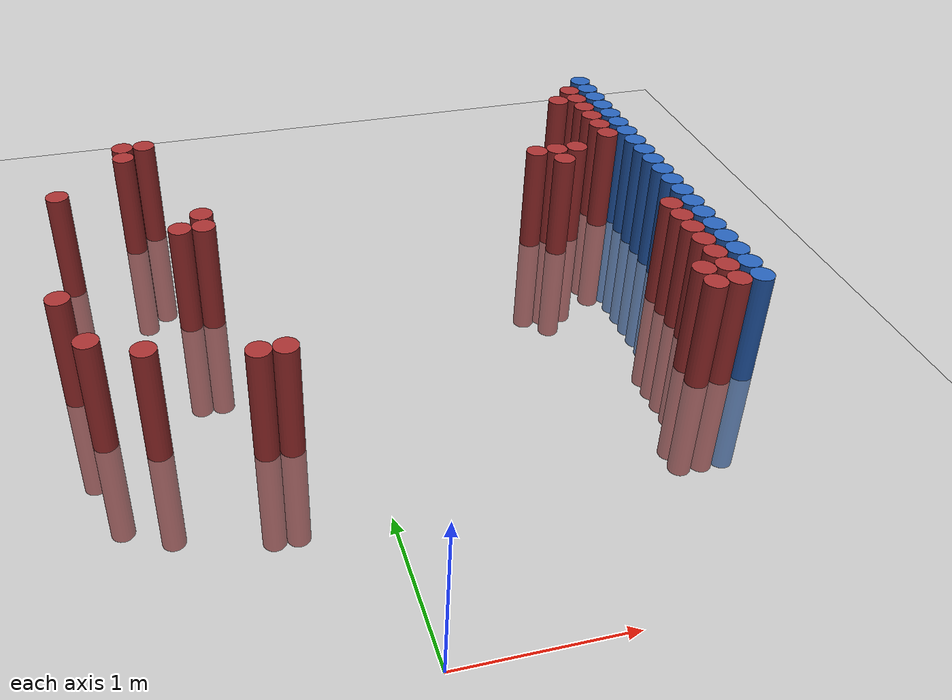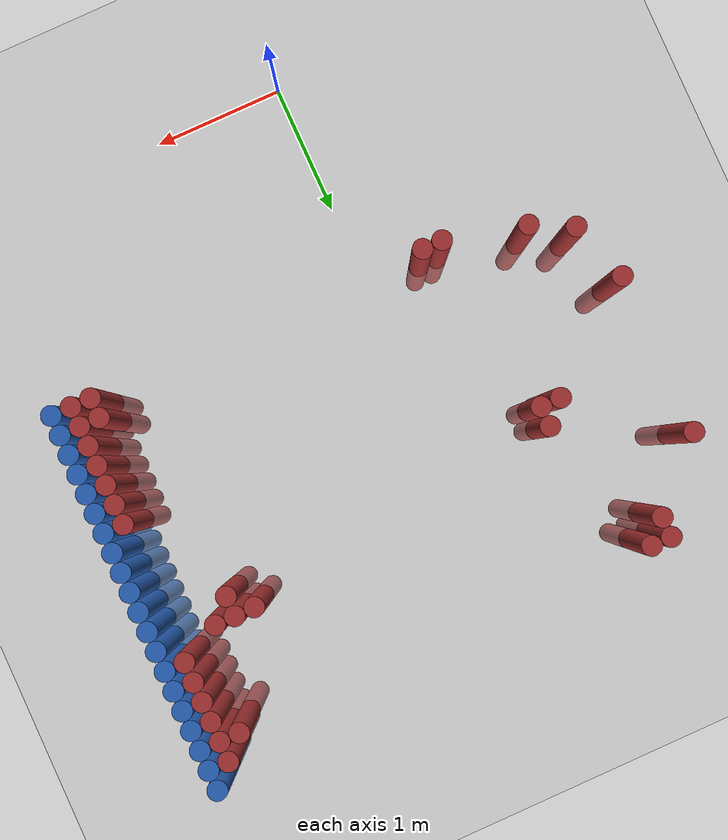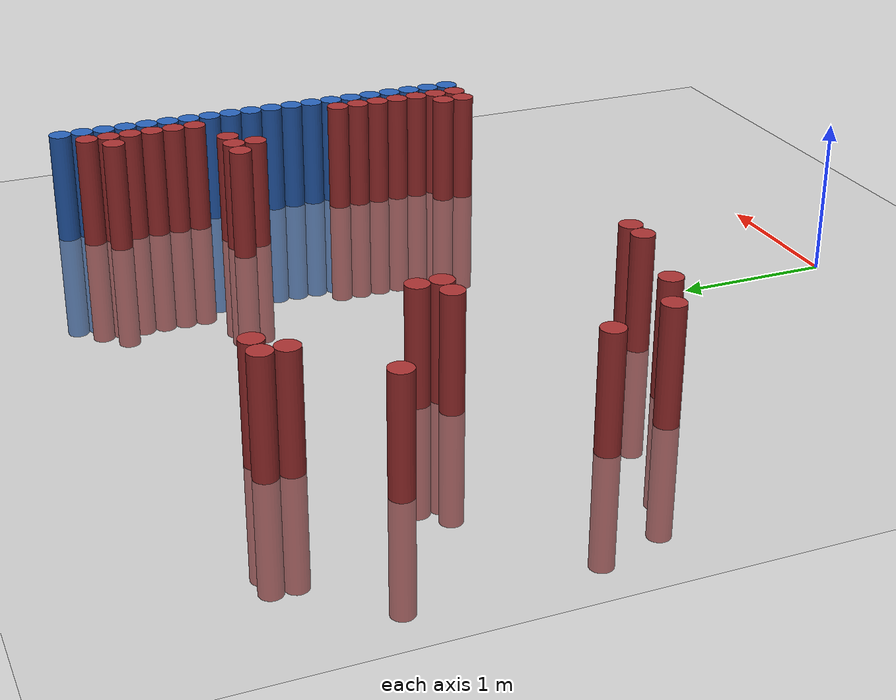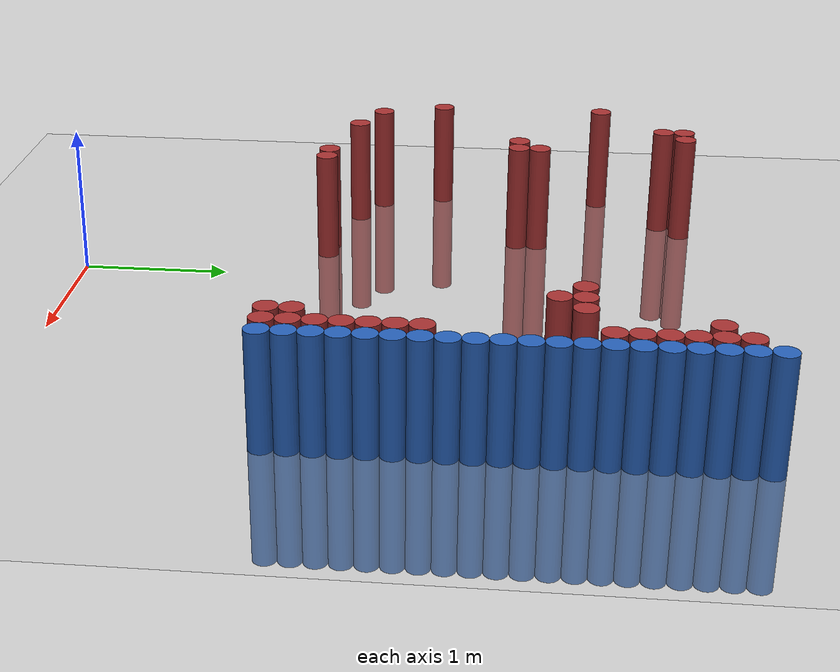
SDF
<sdf version="1.6">
 <world name="default">
  <model name="ground_plane">
   <static>1</static>
   <link name="link">
    <collision name="collision">
     <geometry><plane><normal>0 0 1</normal><size>100 100</size></plane></geometry>
     <surface><friction><ode><mu>100</mu><mu2>50</mu2></ode></friction></surface>
    </collision>
    <visual name="visual">
     <cast_shadows>0</cast_shadows>
     <geometry><plane><normal>0 0 1</normal><size>100 100</size></plane></geometry>
     <material>
      <script><uri>file://media/materials/scripts/gazebo.material</uri><name>Gazebo/Grey</name></script>
     </material>
    </visual>
   </link>
  </model>
  <model name="unit_cylinder_152">
   <static>1</static>
   <pose>-1.625000 2.425000 0.000000 0.000000 0.000000 0.000000</pose>
   <link name="link">
    <inertial>
     <mass>1</mass>
     <inertia><ixx>0.145833</ixx><ixy>0</ixy><ixz>0</ixz><iyy>0.145833</iyy><iyz>0</iyz><izz>0.125</izz></inertia>
    </inertial>
    <collision name="collision">
     <geometry><cylinder><radius>0.075000</radius><length>1.5</length></cylinder></geometry>
    </collision>
    <visual name="visual">
     <geometry><cylinder><radius>0.075000</radius><length>1.5</length></cylinder></geometry>
     <material>
      <ambient>0.648000 0.192000 0.192000 1</ambient>
      <diffuse>0.648000 0.192000 0.192000 1</diffuse>
     </material>
     <material>
      <script><name>Gazebo/Grey</name><uri>file://media/materials/scripts/gazebo.material</uri></script>
     </material>
    </visual>
   </link>
  </model>
  <model name="unit_cylinder_153">
   <static>1</static>
   <pose>-1.625000 3.625000 0.000000 0.000000 0.000000 0.000000</pose>
   <link name="link">
    <inertial>
     <mass>1</mass>
     <inertia><ixx>0.145833</ixx><ixy>0</ixy><ixz>0</ixz><iyy>0.145833</iyy><iyz>0</iyz><izz>0.125</izz></inertia>
    </inertial>
    <collision name="collision">
     <geometry><cylinder><radius>0.075000</radius><length>1.5</length></cylinder></geometry>
    </collision>
    <visual name="visual">
     <geometry><cylinder><radius>0.075000</radius><length>1.5</length></cylinder></geometry>
     <material>
      <ambient>0.648000 0.192000 0.192000 1</ambient>
      <diffuse>0.648000 0.192000 0.192000 1</diffuse>
     </material>
     <material>
      <script><name>Gazebo/Grey</name><uri>file://media/materials/scripts/gazebo.material</uri></script>
     </material>
    </visual>
   </link>
  </model>
  <model name="unit_cylinder_154">
   <static>1</static>
   <pose>-1.475000 1.975000 0.000000 0.000000 0.000000 0.000000</pose>
   <link name="link">
    <inertial>
     <mass>1</mass>
     <inertia><ixx>0.145833</ixx><ixy>0</ixy><ixz>0</ixz><iyy>0.145833</iyy><iyz>0</iyz><izz>0.125</izz></inertia>
    </inertial>
    <collision name="collision">
     <geometry><cylinder><radius>0.075000</radius><length>1.5</length></cylinder></geometry>
    </collision>
    <visual name="visual">
     <geometry><cylinder><radius>0.075000</radius><length>1.5</length></cylinder></geometry>
     <material>
      <ambient>0.648000 0.192000 0.192000 1</ambient>
      <diffuse>0.648000 0.192000 0.192000 1</diffuse>
     </material>
     <material>
      <script><name>Gazebo/Grey</name><uri>file://media/materials/scripts/gazebo.material</uri></script>
     </material>
    </visual>
   </link>
  </model>
  <model name="unit_cylinder_163">
   <static>1</static>
   <pose>-1.175000 1.825000 0.000000 0.000000 0.000000 0.000000</pose>
   <link name="link">
    <inertial>
     <mass>1</mass>
     <inertia><ixx>0.145833</ixx><ixy>0</ixy><ixz>0</ixz><iyy>0.145833</iyy><iyz>0</iyz><izz>0.125</izz></inertia>
    </inertial>
    <collision name="collision">
     <geometry><cylinder><radius>0.075000</radius><length>1.5</length></cylinder></geometry>
    </collision>
    <visual name="visual">
     <geometry><cylinder><radius>0.075000</radius><length>1.5</length></cylinder></geometry>
     <material>
      <ambient>0.648000 0.192000 0.192000 1</ambient>
      <diffuse>0.648000 0.192000 0.192000 1</diffuse>
     </material>
     <material>
      <script><name>Gazebo/Grey</name><uri>file://media/materials/scripts/gazebo.material</uri></script>
     </material>
    </visual>
   </link>
  </model>
  <model name="unit_cylinder_164">
   <static>1</static>
   <pose>-1.175000 4.075000 0.000000 0.000000 0.000000 0.000000</pose>
   <link name="link">
    <inertial>
     <mass>1</mass>
     <inertia><ixx>0.145833</ixx><ixy>0</ixy><ixz>0</ixz><iyy>0.145833</iyy><iyz>0</iyz><izz>0.125</izz></inertia>
    </inertial>
    <collision name="collision">
     <geometry><cylinder><radius>0.075000</radius><length>1.5</length></cylinder></geometry>
    </collision>
    <visual name="visual">
     <geometry><cylinder><radius>0.075000</radius><length>1.5</length></cylinder></geometry>
     <material>
      <ambient>0.648000 0.192000 0.192000 1</ambient>
      <diffuse>0.648000 0.192000 0.192000 1</diffuse>
     </material>
     <material>
      <script><name>Gazebo/Grey</name><uri>file://media/materials/scripts/gazebo.material</uri></script>
     </material>
    </visual>
   </link>
  </model>
  <model name="unit_cylinder_165">
   <static>1</static>
   <pose>-1.175000 4.225000 0.000000 0.000000 0.000000 0.000000</pose>
   <link name="link">
    <inertial>
     <mass>1</mass>
     <inertia><ixx>0.145833</ixx><ixy>0</ixy><ixz>0</ixz><iyy>0.145833</iyy><iyz>0</iyz><izz>0.125</izz></inertia>
    </inertial>
    <collision name="collision">
     <geometry><cylinder><radius>0.075000</radius><length>1.5</length></cylinder></geometry>
    </collision>
    <visual name="visual">
     <geometry><cylinder><radius>0.075000</radius><length>1.5</length></cylinder></geometry>
     <material>
      <ambient>0.648000 0.192000 0.192000 1</ambient>
      <diffuse>0.648000 0.192000 0.192000 1</diffuse>
     </material>
     <material>
      <script><name>Gazebo/Grey</name><uri>file://media/materials/scripts/gazebo.material</uri></script>
     </material>
    </visual>
   </link>
  </model>
  <model name="unit_cylinder_168">
   <static>1</static>
   <pose>-1.025000 4.225000 0.000000 0.000000 0.000000 0.000000</pose>
   <link name="link">
    <inertial>
     <mass>1</mass>
     <inertia><ixx>0.145833</ixx><ixy>0</ixy><ixz>0</ixz><iyy>0.145833</iyy><iyz>0</iyz><izz>0.125</izz></inertia>
    </inertial>
    <collision name="collision">
     <geometry><cylinder><radius>0.075000</radius><length>1.5</length></cylinder></geometry>
    </collision>
    <visual name="visual">
     <geometry><cylinder><radius>0.075000</radius><length>1.5</length></cylinder></geometry>
     <material>
      <ambient>0.648000 0.192000 0.192000 1</ambient>
      <diffuse>0.648000 0.192000 0.192000 1</diffuse>
     </material>
     <material>
      <script><name>Gazebo/Grey</name><uri>file://media/materials/scripts/gazebo.material</uri></script>
     </material>
    </visual>
   </link>
  </model>
  <model name="unit_cylinder_170">
   <static>1</static>
   <pose>-0.875000 3.025000 0.000000 0.000000 0.000000 0.000000</pose>
   <link name="link">
    <inertial>
     <mass>1</mass>
     <inertia><ixx>0.145833</ixx><ixy>0</ixy><ixz>0</ixz><iyy>0.145833</iyy><iyz>0</iyz><izz>0.125</izz></inertia>
    </inertial>
    <collision name="collision">
     <geometry><cylinder><radius>0.075000</radius><length>1.5</length></cylinder></geometry>
    </collision>
    <visual name="visual">
     <geometry><cylinder><radius>0.075000</radius><length>1.5</length></cylinder></geometry>
     <material>
      <ambient>0.648000 0.192000 0.192000 1</ambient>
      <diffuse>0.648000 0.192000 0.192000 1</diffuse>
     </material>
     <material>
      <script><name>Gazebo/Grey</name><uri>file://media/materials/scripts/gazebo.material</uri></script>
     </material>
    </visual>
   </link>
  </model>
  <model name="unit_cylinder_174">
   <static>1</static>
   <pose>-0.725000 3.025000 0.000000 0.000000 0.000000 0.000000</pose>
   <link name="link">
    <inertial>
     <mass>1</mass>
     <inertia><ixx>0.145833</ixx><ixy>0</ixy><ixz>0</ixz><iyy>0.145833</iyy><iyz>0</iyz><izz>0.125</izz></inertia>
    </inertial>
    <collision name="collision">
     <geometry><cylinder><radius>0.075000</radius><length>1.5</length></cylinder></geometry>
    </collision>
    <visual name="visual">
     <geometry><cylinder><radius>0.075000</radius><length>1.5</length></cylinder></geometry>
     <material>
      <ambient>0.648000 0.192000 0.192000 1</ambient>
      <diffuse>0.648000 0.192000 0.192000 1</diffuse>
     </material>
     <material>
      <script><name>Gazebo/Grey</name><uri>file://media/materials/scripts/gazebo.material</uri></script>
     </material>
    </visual>
   </link>
  </model>
  <model name="unit_cylinder_175">
   <static>1</static>
   <pose>-0.725000 3.175000 0.000000 0.000000 0.000000 0.000000</pose>
   <link name="link">
    <inertial>
     <mass>1</mass>
     <inertia><ixx>0.145833</ixx><ixy>0</ixy><ixz>0</ixz><iyy>0.145833</iyy><iyz>0</iyz><izz>0.125</izz></inertia>
    </inertial>
    <collision name="collision">
     <geometry><cylinder><radius>0.075000</radius><length>1.5</length></cylinder></geometry>
    </collision>
    <visual name="visual">
     <geometry><cylinder><radius>0.075000</radius><length>1.5</length></cylinder></geometry>
     <material>
      <ambient>0.648000 0.192000 0.192000 1</ambient>
      <diffuse>0.648000 0.192000 0.192000 1</diffuse>
     </material>
     <material>
      <script><name>Gazebo/Grey</name><uri>file://media/materials/scripts/gazebo.material</uri></script>
     </material>
    </visual>
   </link>
  </model>
  <model name="unit_cylinder_180">
   <static>1</static>
   <pose>-0.575000 1.675000 0.000000 0.000000 0.000000 0.000000</pose>
   <link name="link">
    <inertial>
     <mass>1</mass>
     <inertia><ixx>0.145833</ixx><ixy>0</ixy><ixz>0</ixz><iyy>0.145833</iyy><iyz>0</iyz><izz>0.125</izz></inertia>
    </inertial>
    <collision name="collision">
     <geometry><cylinder><radius>0.075000</radius><length>1.5</length></cylinder></geometry>
    </collision>
    <visual name="visual">
     <geometry><cylinder><radius>0.075000</radius><length>1.5</length></cylinder></geometry>
     <material>
      <ambient>0.648000 0.192000 0.192000 1</ambient>
      <diffuse>0.648000 0.192000 0.192000 1</diffuse>
     </material>
     <material>
      <script><name>Gazebo/Grey</name><uri>file://media/materials/scripts/gazebo.material</uri></script>
     </material>
    </visual>
   </link>
  </model>
  <model name="unit_cylinder_183">
   <static>1</static>
   <pose>-0.425000 1.675000 0.000000 0.000000 0.000000 0.000000</pose>
   <link name="link">
    <inertial>
     <mass>1</mass>
     <inertia><ixx>0.145833</ixx><ixy>0</ixy><ixz>0</ixz><iyy>0.145833</iyy><iyz>0</iyz><izz>0.125</izz></inertia>
    </inertial>
    <collision name="collision">
     <geometry><cylinder><radius>0.075000</radius><length>1.5</length></cylinder></geometry>
    </collision>
    <visual name="visual">
     <geometry><cylinder><radius>0.075000</radius><length>1.5</length></cylinder></geometry>
     <material>
      <ambient>0.648000 0.192000 0.192000 1</ambient>
      <diffuse>0.648000 0.192000 0.192000 1</diffuse>
     </material>
     <material>
      <script><name>Gazebo/Grey</name><uri>file://media/materials/scripts/gazebo.material</uri></script>
     </material>
    </visual>
   </link>
  </model>
  <model name="unit_cylinder_194">
   <static>1</static>
   <pose>1.675000 3.475000 0.000000 0.000000 0.000000 0.000000</pose>
   <link name="link">
    <inertial>
     <mass>1</mass>
     <inertia><ixx>0.145833</ixx><ixy>0</ixy><ixz>0</ixz><iyy>0.145833</iyy><iyz>0</iyz><izz>0.125</izz></inertia>
    </inertial>
    <collision name="collision">
     <geometry><cylinder><radius>0.075000</radius><length>1.5</length></cylinder></geometry>
    </collision>
    <visual name="visual">
     <geometry><cylinder><radius>0.075000</radius><length>1.5</length></cylinder></geometry>
     <material>
      <ambient>0.648000 0.192000 0.192000 1</ambient>
      <diffuse>0.648000 0.192000 0.192000 1</diffuse>
     </material>
     <material>
      <script><name>Gazebo/Grey</name><uri>file://media/materials/scripts/gazebo.material</uri></script>
     </material>
    </visual>
   </link>
  </model>
  <model name="unit_cylinder_197">
   <static>1</static>
   <pose>1.825000 3.325000 0.000000 0.000000 0.000000 0.000000</pose>
   <link name="link">
    <inertial>
     <mass>1</mass>
     <inertia><ixx>0.145833</ixx><ixy>0</ixy><ixz>0</ixz><iyy>0.145833</iyy><iyz>0</iyz><izz>0.125</izz></inertia>
    </inertial>
    <collision name="collision">
     <geometry><cylinder><radius>0.075000</radius><length>1.5</length></cylinder></geometry>
    </collision>
    <visual name="visual">
     <geometry><cylinder><radius>0.075000</radius><length>1.5</length></cylinder></geometry>
     <material>
      <ambient>0.648000 0.192000 0.192000 1</ambient>
      <diffuse>0.648000 0.192000 0.192000 1</diffuse>
     </material>
     <material>
      <script><name>Gazebo/Grey</name><uri>file://media/materials/scripts/gazebo.material</uri></script>
     </material>
    </visual>
   </link>
  </model>
  <model name="unit_cylinder_198">
   <static>1</static>
   <pose>1.825000 3.475000 0.000000 0.000000 0.000000 0.000000</pose>
   <link name="link">
    <inertial>
     <mass>1</mass>
     <inertia><ixx>0.145833</ixx><ixy>0</ixy><ixz>0</ixz><iyy>0.145833</iyy><iyz>0</iyz><izz>0.125</izz></inertia>
    </inertial>
    <collision name="collision">
     <geometry><cylinder><radius>0.075000</radius><length>1.5</length></cylinder></geometry>
    </collision>
    <visual name="visual">
     <geometry><cylinder><radius>0.075000</radius><length>1.5</length></cylinder></geometry>
     <material>
      <ambient>0.648000 0.192000 0.192000 1</ambient>
      <diffuse>0.648000 0.192000 0.192000 1</diffuse>
     </material>
     <material>
      <script><name>Gazebo/Grey</name><uri>file://media/materials/scripts/gazebo.material</uri></script>
     </material>
    </visual>
   </link>
  </model>
  <model name="unit_cylinder_201">
   <static>1</static>
   <pose>1.975000 3.475000 0.000000 0.000000 0.000000 0.000000</pose>
   <link name="link">
    <inertial>
     <mass>1</mass>
     <inertia><ixx>0.145833</ixx><ixy>0</ixy><ixz>0</ixz><iyy>0.145833</iyy><iyz>0</iyz><izz>0.125</izz></inertia>
    </inertial>
    <collision name="collision">
     <geometry><cylinder><radius>0.075000</radius><length>1.5</length></cylinder></geometry>
    </collision>
    <visual name="visual">
     <geometry><cylinder><radius>0.075000</radius><length>1.5</length></cylinder></geometry>
     <material>
      <ambient>0.648000 0.192000 0.192000 1</ambient>
      <diffuse>0.648000 0.192000 0.192000 1</diffuse>
     </material>
     <material>
      <script><name>Gazebo/Grey</name><uri>file://media/materials/scripts/gazebo.material</uri></script>
     </material>
    </visual>
   </link>
  </model>
  <model name="unit_cylinder_205">
   <static>1</static>
   <pose>2.125000 1.675000 0.000000 0.000000 0.000000 0.000000</pose>
   <link name="link">
    <inertial>
     <mass>1</mass>
     <inertia><ixx>0.145833</ixx><ixy>0</ixy><ixz>0</ixz><iyy>0.145833</iyy><iyz>0</iyz><izz>0.125</izz></inertia>
    </inertial>
    <collision name="collision">
     <geometry><cylinder><radius>0.075000</radius><length>1.5</length></cylinder></geometry>
    </collision>
    <visual name="visual">
     <geometry><cylinder><radius>0.075000</radius><length>1.5</length></cylinder></geometry>
     <material>
      <ambient>0.648000 0.192000 0.192000 1</ambient>
      <diffuse>0.648000 0.192000 0.192000 1</diffuse>
     </material>
     <material>
      <script><name>Gazebo/Grey</name><uri>file://media/materials/scripts/gazebo.material</uri></script>
     </material>
    </visual>
   </link>
  </model>
  <model name="unit_cylinder_206">
   <static>1</static>
   <pose>2.125000 1.825000 0.000000 0.000000 0.000000 0.000000</pose>
   <link name="link">
    <inertial>
     <mass>1</mass>
     <inertia><ixx>0.145833</ixx><ixy>0</ixy><ixz>0</ixz><iyy>0.145833</iyy><iyz>0</iyz><izz>0.125</izz></inertia>
    </inertial>
    <collision name="collision">
     <geometry><cylinder><radius>0.075000</radius><length>1.5</length></cylinder></geometry>
    </collision>
    <visual name="visual">
     <geometry><cylinder><radius>0.075000</radius><length>1.5</length></cylinder></geometry>
     <material>
      <ambient>0.648000 0.192000 0.192000 1</ambient>
      <diffuse>0.648000 0.192000 0.192000 1</diffuse>
     </material>
     <material>
      <script><name>Gazebo/Grey</name><uri>file://media/materials/scripts/gazebo.material</uri></script>
     </material>
    </visual>
   </link>
  </model>
  <model name="unit_cylinder_207">
   <static>1</static>
   <pose>2.125000 4.225000 0.000000 0.000000 0.000000 0.000000</pose>
   <link name="link">
    <inertial>
     <mass>1</mass>
     <inertia><ixx>0.145833</ixx><ixy>0</ixy><ixz>0</ixz><iyy>0.145833</iyy><iyz>0</iyz><izz>0.125</izz></inertia>
    </inertial>
    <collision name="collision">
     <geometry><cylinder><radius>0.075000</radius><length>1.5</length></cylinder></geometry>
    </collision>
    <visual name="visual">
     <geometry><cylinder><radius>0.075000</radius><length>1.5</length></cylinder></geometry>
     <material>
      <ambient>0.648000 0.192000 0.192000 1</ambient>
      <diffuse>0.648000 0.192000 0.192000 1</diffuse>
     </material>
     <material>
      <script><name>Gazebo/Grey</name><uri>file://media/materials/scripts/gazebo.material</uri></script>
     </material>
    </visual>
   </link>
  </model>
  <model name="unit_cylinder_215">
   <static>1</static>
   <pose>2.275000 1.675000 0.000000 0.000000 0.000000 0.000000</pose>
   <link name="link">
    <inertial>
     <mass>1</mass>
     <inertia><ixx>0.145833</ixx><ixy>0</ixy><ixz>0</ixz><iyy>0.145833</iyy><iyz>0</iyz><izz>0.125</izz></inertia>
    </inertial>
    <collision name="collision">
     <geometry><cylinder><radius>0.075000</radius><length>1.5</length></cylinder></geometry>
    </collision>
    <visual name="visual">
     <geometry><cylinder><radius>0.075000</radius><length>1.5</length></cylinder></geometry>
     <material>
      <ambient>0.648000 0.192000 0.192000 1</ambient>
      <diffuse>0.648000 0.192000 0.192000 1</diffuse>
     </material>
     <material>
      <script><name>Gazebo/Grey</name><uri>file://media/materials/scripts/gazebo.material</uri></script>
     </material>
    </visual>
   </link>
  </model>
  <model name="unit_cylinder_216">
   <static>1</static>
   <pose>2.275000 1.825000 0.000000 0.000000 0.000000 0.000000</pose>
   <link name="link">
    <inertial>
     <mass>1</mass>
     <inertia><ixx>0.145833</ixx><ixy>0</ixy><ixz>0</ixz><iyy>0.145833</iyy><iyz>0</iyz><izz>0.125</izz></inertia>
    </inertial>
    <collision name="collision">
     <geometry><cylinder><radius>0.075000</radius><length>1.5</length></cylinder></geometry>
    </collision>
    <visual name="visual">
     <geometry><cylinder><radius>0.075000</radius><length>1.5</length></cylinder></geometry>
     <material>
      <ambient>0.648000 0.192000 0.192000 1</ambient>
      <diffuse>0.648000 0.192000 0.192000 1</diffuse>
     </material>
     <material>
      <script><name>Gazebo/Grey</name><uri>file://media/materials/scripts/gazebo.material</uri></script>
     </material>
    </visual>
   </link>
  </model>
  <model name="unit_cylinder_217">
   <static>1</static>
   <pose>2.275000 1.975000 0.000000 0.000000 0.000000 0.000000</pose>
   <link name="link">
    <inertial>
     <mass>1</mass>
     <inertia><ixx>0.145833</ixx><ixy>0</ixy><ixz>0</ixz><iyy>0.145833</iyy><iyz>0</iyz><izz>0.125</izz></inertia>
    </inertial>
    <collision name="collision">
     <geometry><cylinder><radius>0.075000</radius><length>1.5</length></cylinder></geometry>
    </collision>
    <visual name="visual">
     <geometry><cylinder><radius>0.075000</radius><length>1.5</length></cylinder></geometry>
     <material>
      <ambient>0.648000 0.192000 0.192000 1</ambient>
      <diffuse>0.648000 0.192000 0.192000 1</diffuse>
     </material>
     <material>
      <script><name>Gazebo/Grey</name><uri>file://media/materials/scripts/gazebo.material</uri></script>
     </material>
    </visual>
   </link>
  </model>
  <model name="unit_cylinder_218">
   <static>1</static>
   <pose>2.275000 2.125000 0.000000 0.000000 0.000000 0.000000</pose>
   <link name="link">
    <inertial>
     <mass>1</mass>
     <inertia><ixx>0.145833</ixx><ixy>0</ixy><ixz>0</ixz><iyy>0.145833</iyy><iyz>0</iyz><izz>0.125</izz></inertia>
    </inertial>
    <collision name="collision">
     <geometry><cylinder><radius>0.075000</radius><length>1.5</length></cylinder></geometry>
    </collision>
    <visual name="visual">
     <geometry><cylinder><radius>0.075000</radius><length>1.5</length></cylinder></geometry>
     <material>
      <ambient>0.648000 0.192000 0.192000 1</ambient>
      <diffuse>0.648000 0.192000 0.192000 1</diffuse>
     </material>
     <material>
      <script><name>Gazebo/Grey</name><uri>file://media/materials/scripts/gazebo.material</uri></script>
     </material>
    </visual>
   </link>
  </model>
  <model name="unit_cylinder_219">
   <static>1</static>
   <pose>2.275000 2.275000 0.000000 0.000000 0.000000 0.000000</pose>
   <link name="link">
    <inertial>
     <mass>1</mass>
     <inertia><ixx>0.145833</ixx><ixy>0</ixy><ixz>0</ixz><iyy>0.145833</iyy><iyz>0</iyz><izz>0.125</izz></inertia>
    </inertial>
    <collision name="collision">
     <geometry><cylinder><radius>0.075000</radius><length>1.5</length></cylinder></geometry>
    </collision>
    <visual name="visual">
     <geometry><cylinder><radius>0.075000</radius><length>1.5</length></cylinder></geometry>
     <material>
      <ambient>0.648000 0.192000 0.192000 1</ambient>
      <diffuse>0.648000 0.192000 0.192000 1</diffuse>
     </material>
     <material>
      <script><name>Gazebo/Grey</name><uri>file://media/materials/scripts/gazebo.material</uri></script>
     </material>
    </visual>
   </link>
  </model>
  <model name="unit_cylinder_220">
   <static>1</static>
   <pose>2.275000 2.425000 0.000000 0.000000 0.000000 0.000000</pose>
   <link name="link">
    <inertial>
     <mass>1</mass>
     <inertia><ixx>0.145833</ixx><ixy>0</ixy><ixz>0</ixz><iyy>0.145833</iyy><iyz>0</iyz><izz>0.125</izz></inertia>
    </inertial>
    <collision name="collision">
     <geometry><cylinder><radius>0.075000</radius><length>1.5</length></cylinder></geometry>
    </collision>
    <visual name="visual">
     <geometry><cylinder><radius>0.075000</radius><length>1.5</length></cylinder></geometry>
     <material>
      <ambient>0.648000 0.192000 0.192000 1</ambient>
      <diffuse>0.648000 0.192000 0.192000 1</diffuse>
     </material>
     <material>
      <script><name>Gazebo/Grey</name><uri>file://media/materials/scripts/gazebo.material</uri></script>
     </material>
    </visual>
   </link>
  </model>
  <model name="unit_cylinder_221">
   <static>1</static>
   <pose>2.275000 2.575000 0.000000 0.000000 0.000000 0.000000</pose>
   <link name="link">
    <inertial>
     <mass>1</mass>
     <inertia><ixx>0.145833</ixx><ixy>0</ixy><ixz>0</ixz><iyy>0.145833</iyy><iyz>0</iyz><izz>0.125</izz></inertia>
    </inertial>
    <collision name="collision">
     <geometry><cylinder><radius>0.075000</radius><length>1.5</length></cylinder></geometry>
    </collision>
    <visual name="visual">
     <geometry><cylinder><radius>0.075000</radius><length>1.5</length></cylinder></geometry>
     <material>
      <ambient>0.648000 0.192000 0.192000 1</ambient>
      <diffuse>0.648000 0.192000 0.192000 1</diffuse>
     </material>
     <material>
      <script><name>Gazebo/Grey</name><uri>file://media/materials/scripts/gazebo.material</uri></script>
     </material>
    </visual>
   </link>
  </model>
  <model name="unit_cylinder_222">
   <static>1</static>
   <pose>2.275000 3.625000 0.000000 0.000000 0.000000 0.000000</pose>
   <link name="link">
    <inertial>
     <mass>1</mass>
     <inertia><ixx>0.145833</ixx><ixy>0</ixy><ixz>0</ixz><iyy>0.145833</iyy><iyz>0</iyz><izz>0.125</izz></inertia>
    </inertial>
    <collision name="collision">
     <geometry><cylinder><radius>0.075000</radius><length>1.5</length></cylinder></geometry>
    </collision>
    <visual name="visual">
     <geometry><cylinder><radius>0.075000</radius><length>1.5</length></cylinder></geometry>
     <material>
      <ambient>0.648000 0.192000 0.192000 1</ambient>
      <diffuse>0.648000 0.192000 0.192000 1</diffuse>
     </material>
     <material>
      <script><name>Gazebo/Grey</name><uri>file://media/materials/scripts/gazebo.material</uri></script>
     </material>
    </visual>
   </link>
  </model>
  <model name="unit_cylinder_223">
   <static>1</static>
   <pose>2.275000 3.775000 0.000000 0.000000 0.000000 0.000000</pose>
   <link name="link">
    <inertial>
     <mass>1</mass>
     <inertia><ixx>0.145833</ixx><ixy>0</ixy><ixz>0</ixz><iyy>0.145833</iyy><iyz>0</iyz><izz>0.125</izz></inertia>
    </inertial>
    <collision name="collision">
     <geometry><cylinder><radius>0.075000</radius><length>1.5</length></cylinder></geometry>
    </collision>
    <visual name="visual">
     <geometry><cylinder><radius>0.075000</radius><length>1.5</length></cylinder></geometry>
     <material>
      <ambient>0.648000 0.192000 0.192000 1</ambient>
      <diffuse>0.648000 0.192000 0.192000 1</diffuse>
     </material>
     <material>
      <script><name>Gazebo/Grey</name><uri>file://media/materials/scripts/gazebo.material</uri></script>
     </material>
    </visual>
   </link>
  </model>
  <model name="unit_cylinder_224">
   <static>1</static>
   <pose>2.275000 3.925000 0.000000 0.000000 0.000000 0.000000</pose>
   <link name="link">
    <inertial>
     <mass>1</mass>
     <inertia><ixx>0.145833</ixx><ixy>0</ixy><ixz>0</ixz><iyy>0.145833</iyy><iyz>0</iyz><izz>0.125</izz></inertia>
    </inertial>
    <collision name="collision">
     <geometry><cylinder><radius>0.075000</radius><length>1.5</length></cylinder></geometry>
    </collision>
    <visual name="visual">
     <geometry><cylinder><radius>0.075000</radius><length>1.5</length></cylinder></geometry>
     <material>
      <ambient>0.648000 0.192000 0.192000 1</ambient>
      <diffuse>0.648000 0.192000 0.192000 1</diffuse>
     </material>
     <material>
      <script><name>Gazebo/Grey</name><uri>file://media/materials/scripts/gazebo.material</uri></script>
     </material>
    </visual>
   </link>
  </model>
  <model name="unit_cylinder_225">
   <static>1</static>
   <pose>2.275000 4.075000 0.000000 0.000000 0.000000 0.000000</pose>
   <link name="link">
    <inertial>
     <mass>1</mass>
     <inertia><ixx>0.145833</ixx><ixy>0</ixy><ixz>0</ixz><iyy>0.145833</iyy><iyz>0</iyz><izz>0.125</izz></inertia>
    </inertial>
    <collision name="collision">
     <geometry><cylinder><radius>0.075000</radius><length>1.5</length></cylinder></geometry>
    </collision>
    <visual name="visual">
     <geometry><cylinder><radius>0.075000</radius><length>1.5</length></cylinder></geometry>
     <material>
      <ambient>0.648000 0.192000 0.192000 1</ambient>
      <diffuse>0.648000 0.192000 0.192000 1</diffuse>
     </material>
     <material>
      <script><name>Gazebo/Grey</name><uri>file://media/materials/scripts/gazebo.material</uri></script>
     </material>
    </visual>
   </link>
  </model>
  <model name="unit_cylinder_226">
   <static>1</static>
   <pose>2.275000 4.225000 0.000000 0.000000 0.000000 0.000000</pose>
   <link name="link">
    <inertial>
     <mass>1</mass>
     <inertia><ixx>0.145833</ixx><ixy>0</ixy><ixz>0</ixz><iyy>0.145833</iyy><iyz>0</iyz><izz>0.125</izz></inertia>
    </inertial>
    <collision name="collision">
     <geometry><cylinder><radius>0.075000</radius><length>1.5</length></cylinder></geometry>
    </collision>
    <visual name="visual">
     <geometry><cylinder><radius>0.075000</radius><length>1.5</length></cylinder></geometry>
     <material>
      <ambient>0.648000 0.192000 0.192000 1</ambient>
      <diffuse>0.648000 0.192000 0.192000 1</diffuse>
     </material>
     <material>
      <script><name>Gazebo/Grey</name><uri>file://media/materials/scripts/gazebo.material</uri></script>
     </material>
    </visual>
   </link>
  </model>
  <model name="unit_cylinder_227">
   <static>1</static>
   <pose>2.275000 4.375000 0.000000 0.000000 0.000000 0.000000</pose>
   <link name="link">
    <inertial>
     <mass>1</mass>
     <inertia><ixx>0.145833</ixx><ixy>0</ixy><ixz>0</ixz><iyy>0.145833</iyy><iyz>0</iyz><izz>0.125</izz></inertia>
    </inertial>
    <collision name="collision">
     <geometry><cylinder><radius>0.075000</radius><length>1.5</length></cylinder></geometry>
    </collision>
    <visual name="visual">
     <geometry><cylinder><radius>0.075000</radius><length>1.5</length></cylinder></geometry>
     <material>
      <ambient>0.648000 0.192000 0.192000 1</ambient>
      <diffuse>0.648000 0.192000 0.192000 1</diffuse>
     </material>
     <material>
      <script><name>Gazebo/Grey</name><uri>file://media/materials/scripts/gazebo.material</uri></script>
     </material>
    </visual>
   </link>
  </model>
  <model name="unit_cylinder_238">
   <static>1</static>
   <pose>2.425000 1.675000 0.000000 0.000000 0.000000 0.000000</pose>
   <link name="link">
    <inertial>
     <mass>1</mass>
     <inertia><ixx>0.145833</ixx><ixy>0</ixy><ixz>0</ixz><iyy>0.145833</iyy><iyz>0</iyz><izz>0.125</izz></inertia>
    </inertial>
    <collision name="collision">
     <geometry><cylinder><radius>0.075000</radius><length>1.5</length></cylinder></geometry>
    </collision>
    <visual name="visual">
     <geometry><cylinder><radius>0.075000</radius><length>1.5</length></cylinder></geometry>
     <material>
      <ambient>0.152000 0.379000 0.720000 1</ambient>
      <diffuse>0.152000 0.379000 0.720000 1</diffuse>
     </material>
     <material>
      <script><name>Gazebo/Grey</name><uri>file://media/materials/scripts/gazebo.material</uri></script>
     </material>
    </visual>
   </link>
  </model>
  <model name="unit_cylinder_239">
   <static>1</static>
   <pose>2.425000 1.825000 0.000000 0.000000 0.000000 0.000000</pose>
   <link name="link">
    <inertial>
     <mass>1</mass>
     <inertia><ixx>0.145833</ixx><ixy>0</ixy><ixz>0</ixz><iyy>0.145833</iyy><iyz>0</iyz><izz>0.125</izz></inertia>
    </inertial>
    <collision name="collision">
     <geometry><cylinder><radius>0.075000</radius><length>1.5</length></cylinder></geometry>
    </collision>
    <visual name="visual">
     <geometry><cylinder><radius>0.075000</radius><length>1.5</length></cylinder></geometry>
     <material>
      <ambient>0.152000 0.379000 0.720000 1</ambient>
      <diffuse>0.152000 0.379000 0.720000 1</diffuse>
     </material>
     <material>
      <script><name>Gazebo/Grey</name><uri>file://media/materials/scripts/gazebo.material</uri></script>
     </material>
    </visual>
   </link>
  </model>
  <model name="unit_cylinder_240">
   <static>1</static>
   <pose>2.425000 1.975000 0.000000 0.000000 0.000000 0.000000</pose>
   <link name="link">
    <inertial>
     <mass>1</mass>
     <inertia><ixx>0.145833</ixx><ixy>0</ixy><ixz>0</ixz><iyy>0.145833</iyy><iyz>0</iyz><izz>0.125</izz></inertia>
    </inertial>
    <collision name="collision">
     <geometry><cylinder><radius>0.075000</radius><length>1.5</length></cylinder></geometry>
    </collision>
    <visual name="visual">
     <geometry><cylinder><radius>0.075000</radius><length>1.5</length></cylinder></geometry>
     <material>
      <ambient>0.152000 0.379000 0.720000 1</ambient>
      <diffuse>0.152000 0.379000 0.720000 1</diffuse>
     </material>
     <material>
      <script><name>Gazebo/Grey</name><uri>file://media/materials/scripts/gazebo.material</uri></script>
     </material>
    </visual>
   </link>
  </model>
  <model name="unit_cylinder_241">
   <static>1</static>
   <pose>2.425000 2.125000 0.000000 0.000000 0.000000 0.000000</pose>
   <link name="link">
    <inertial>
     <mass>1</mass>
     <inertia><ixx>0.145833</ixx><ixy>0</ixy><ixz>0</ixz><iyy>0.145833</iyy><iyz>0</iyz><izz>0.125</izz></inertia>
    </inertial>
    <collision name="collision">
     <geometry><cylinder><radius>0.075000</radius><length>1.5</length></cylinder></geometry>
    </collision>
    <visual name="visual">
     <geometry><cylinder><radius>0.075000</radius><length>1.5</length></cylinder></geometry>
     <material>
      <ambient>0.152000 0.379000 0.720000 1</ambient>
      <diffuse>0.152000 0.379000 0.720000 1</diffuse>
     </material>
     <material>
      <script><name>Gazebo/Grey</name><uri>file://media/materials/scripts/gazebo.material</uri></script>
     </material>
    </visual>
   </link>
  </model>
  <model name="unit_cylinder_242">
   <static>1</static>
   <pose>2.425000 2.275000 0.000000 0.000000 0.000000 0.000000</pose>
   <link name="link">
    <inertial>
     <mass>1</mass>
     <inertia><ixx>0.145833</ixx><ixy>0</ixy><ixz>0</ixz><iyy>0.145833</iyy><iyz>0</iyz><izz>0.125</izz></inertia>
    </inertial>
    <collision name="collision">
     <geometry><cylinder><radius>0.075000</radius><length>1.5</length></cylinder></geometry>
    </collision>
    <visual name="visual">
     <geometry><cylinder><radius>0.075000</radius><length>1.5</length></cylinder></geometry>
     <material>
      <ambient>0.152000 0.379000 0.720000 1</ambient>
      <diffuse>0.152000 0.379000 0.720000 1</diffuse>
     </material>
     <material>
      <script><name>Gazebo/Grey</name><uri>file://media/materials/scripts/gazebo.material</uri></script>
     </material>
    </visual>
   </link>
  </model>
  <model name="unit_cylinder_243">
   <static>1</static>
   <pose>2.425000 2.425000 0.000000 0.000000 0.000000 0.000000</pose>
   <link name="link">
    <inertial>
     <mass>1</mass>
     <inertia><ixx>0.145833</ixx><ixy>0</ixy><ixz>0</ixz><iyy>0.145833</iyy><iyz>0</iyz><izz>0.125</izz></inertia>
    </inertial>
    <collision name="collision">
     <geometry><cylinder><radius>0.075000</radius><length>1.5</length></cylinder></geometry>
    </collision>
    <visual name="visual">
     <geometry><cylinder><radius>0.075000</radius><length>1.5</length></cylinder></geometry>
     <material>
      <ambient>0.152000 0.379000 0.720000 1</ambient>
      <diffuse>0.152000 0.379000 0.720000 1</diffuse>
     </material>
     <material>
      <script><name>Gazebo/Grey</name><uri>file://media/materials/scripts/gazebo.material</uri></script>
     </material>
    </visual>
   </link>
  </model>
  <model name="unit_cylinder_244">
   <static>1</static>
   <pose>2.425000 2.575000 0.000000 0.000000 0.000000 0.000000</pose>
   <link name="link">
    <inertial>
     <mass>1</mass>
     <inertia><ixx>0.145833</ixx><ixy>0</ixy><ixz>0</ixz><iyy>0.145833</iyy><iyz>0</iyz><izz>0.125</izz></inertia>
    </inertial>
    <collision name="collision">
     <geometry><cylinder><radius>0.075000</radius><length>1.5</length></cylinder></geometry>
    </collision>
    <visual name="visual">
     <geometry><cylinder><radius>0.075000</radius><length>1.5</length></cylinder></geometry>
     <material>
      <ambient>0.152000 0.379000 0.720000 1</ambient>
      <diffuse>0.152000 0.379000 0.720000 1</diffuse>
     </material>
     <material>
      <script><name>Gazebo/Grey</name><uri>file://media/materials/scripts/gazebo.material</uri></script>
     </material>
    </visual>
   </link>
  </model>
  <model name="unit_cylinder_245">
   <static>1</static>
   <pose>2.425000 2.725000 0.000000 0.000000 0.000000 0.000000</pose>
   <link name="link">
    <inertial>
     <mass>1</mass>
     <inertia><ixx>0.145833</ixx><ixy>0</ixy><ixz>0</ixz><iyy>0.145833</iyy><iyz>0</iyz><izz>0.125</izz></inertia>
    </inertial>
    <collision name="collision">
     <geometry><cylinder><radius>0.075000</radius><length>1.5</length></cylinder></geometry>
    </collision>
    <visual name="visual">
     <geometry><cylinder><radius>0.075000</radius><length>1.5</length></cylinder></geometry>
     <material>
      <ambient>0.152000 0.379000 0.720000 1</ambient>
      <diffuse>0.152000 0.379000 0.720000 1</diffuse>
     </material>
     <material>
      <script><name>Gazebo/Grey</name><uri>file://media/materials/scripts/gazebo.material</uri></script>
     </material>
    </visual>
   </link>
  </model>
  <model name="unit_cylinder_246">
   <static>1</static>
   <pose>2.425000 2.875000 0.000000 0.000000 0.000000 0.000000</pose>
   <link name="link">
    <inertial>
     <mass>1</mass>
     <inertia><ixx>0.145833</ixx><ixy>0</ixy><ixz>0</ixz><iyy>0.145833</iyy><iyz>0</iyz><izz>0.125</izz></inertia>
    </inertial>
    <collision name="collision">
     <geometry><cylinder><radius>0.075000</radius><length>1.5</length></cylinder></geometry>
    </collision>
    <visual name="visual">
     <geometry><cylinder><radius>0.075000</radius><length>1.5</length></cylinder></geometry>
     <material>
      <ambient>0.152000 0.379000 0.720000 1</ambient>
      <diffuse>0.152000 0.379000 0.720000 1</diffuse>
     </material>
     <material>
      <script><name>Gazebo/Grey</name><uri>file://media/materials/scripts/gazebo.material</uri></script>
     </material>
    </visual>
   </link>
  </model>
  <model name="unit_cylinder_247">
   <static>1</static>
   <pose>2.425000 3.025000 0.000000 0.000000 0.000000 0.000000</pose>
   <link name="link">
    <inertial>
     <mass>1</mass>
     <inertia><ixx>0.145833</ixx><ixy>0</ixy><ixz>0</ixz><iyy>0.145833</iyy><iyz>0</iyz><izz>0.125</izz></inertia>
    </inertial>
    <collision name="collision">
     <geometry><cylinder><radius>0.075000</radius><length>1.5</length></cylinder></geometry>
    </collision>
    <visual name="visual">
     <geometry><cylinder><radius>0.075000</radius><length>1.5</length></cylinder></geometry>
     <material>
      <ambient>0.152000 0.379000 0.720000 1</ambient>
      <diffuse>0.152000 0.379000 0.720000 1</diffuse>
     </material>
     <material>
      <script><name>Gazebo/Grey</name><uri>file://media/materials/scripts/gazebo.material</uri></script>
     </material>
    </visual>
   </link>
  </model>
  <model name="unit_cylinder_248">
   <static>1</static>
   <pose>2.425000 3.175000 0.000000 0.000000 0.000000 0.000000</pose>
   <link name="link">
    <inertial>
     <mass>1</mass>
     <inertia><ixx>0.145833</ixx><ixy>0</ixy><ixz>0</ixz><iyy>0.145833</iyy><iyz>0</iyz><izz>0.125</izz></inertia>
    </inertial>
    <collision name="collision">
     <geometry><cylinder><radius>0.075000</radius><length>1.5</length></cylinder></geometry>
    </collision>
    <visual name="visual">
     <geometry><cylinder><radius>0.075000</radius><length>1.5</length></cylinder></geometry>
     <material>
      <ambient>0.152000 0.379000 0.720000 1</ambient>
      <diffuse>0.152000 0.379000 0.720000 1</diffuse>
     </material>
     <material>
      <script><name>Gazebo/Grey</name><uri>file://media/materials/scripts/gazebo.material</uri></script>
     </material>
    </visual>
   </link>
  </model>
  <model name="unit_cylinder_249">
   <static>1</static>
   <pose>2.425000 3.325000 0.000000 0.000000 0.000000 0.000000</pose>
   <link name="link">
    <inertial>
     <mass>1</mass>
     <inertia><ixx>0.145833</ixx><ixy>0</ixy><ixz>0</ixz><iyy>0.145833</iyy><iyz>0</iyz><izz>0.125</izz></inertia>
    </inertial>
    <collision name="collision">
     <geometry><cylinder><radius>0.075000</radius><length>1.5</length></cylinder></geometry>
    </collision>
    <visual name="visual">
     <geometry><cylinder><radius>0.075000</radius><length>1.5</length></cylinder></geometry>
     <material>
      <ambient>0.152000 0.379000 0.720000 1</ambient>
      <diffuse>0.152000 0.379000 0.720000 1</diffuse>
     </material>
     <material>
      <script><name>Gazebo/Grey</name><uri>file://media/materials/scripts/gazebo.material</uri></script>
     </material>
    </visual>
   </link>
  </model>
  <model name="unit_cylinder_250">
   <static>1</static>
   <pose>2.425000 3.475000 0.000000 0.000000 0.000000 0.000000</pose>
   <link name="link">
    <inertial>
     <mass>1</mass>
     <inertia><ixx>0.145833</ixx><ixy>0</ixy><ixz>0</ixz><iyy>0.145833</iyy><iyz>0</iyz><izz>0.125</izz></inertia>
    </inertial>
    <collision name="collision">
     <geometry><cylinder><radius>0.075000</radius><length>1.5</length></cylinder></geometry>
    </collision>
    <visual name="visual">
     <geometry><cylinder><radius>0.075000</radius><length>1.5</length></cylinder></geometry>
     <material>
      <ambient>0.152000 0.379000 0.720000 1</ambient>
      <diffuse>0.152000 0.379000 0.720000 1</diffuse>
     </material>
     <material>
      <script><name>Gazebo/Grey</name><uri>file://media/materials/scripts/gazebo.material</uri></script>
     </material>
    </visual>
   </link>
  </model>
  <model name="unit_cylinder_251">
   <static>1</static>
   <pose>2.425000 3.625000 0.000000 0.000000 0.000000 0.000000</pose>
   <link name="link">
    <inertial>
     <mass>1</mass>
     <inertia><ixx>0.145833</ixx><ixy>0</ixy><ixz>0</ixz><iyy>0.145833</iyy><iyz>0</iyz><izz>0.125</izz></inertia>
    </inertial>
    <collision name="collision">
     <geometry><cylinder><radius>0.075000</radius><length>1.5</length></cylinder></geometry>
    </collision>
    <visual name="visual">
     <geometry><cylinder><radius>0.075000</radius><length>1.5</length></cylinder></geometry>
     <material>
      <ambient>0.152000 0.379000 0.720000 1</ambient>
      <diffuse>0.152000 0.379000 0.720000 1</diffuse>
     </material>
     <material>
      <script><name>Gazebo/Grey</name><uri>file://media/materials/scripts/gazebo.material</uri></script>
     </material>
    </visual>
   </link>
  </model>
  <model name="unit_cylinder_252">
   <static>1</static>
   <pose>2.425000 3.775000 0.000000 0.000000 0.000000 0.000000</pose>
   <link name="link">
    <inertial>
     <mass>1</mass>
     <inertia><ixx>0.145833</ixx><ixy>0</ixy><ixz>0</ixz><iyy>0.145833</iyy><iyz>0</iyz><izz>0.125</izz></inertia>
    </inertial>
    <collision name="collision">
     <geometry><cylinder><radius>0.075000</radius><length>1.5</length></cylinder></geometry>
    </collision>
    <visual name="visual">
     <geometry><cylinder><radius>0.075000</radius><length>1.5</length></cylinder></geometry>
     <material>
      <ambient>0.152000 0.379000 0.720000 1</ambient>
      <diffuse>0.152000 0.379000 0.720000 1</diffuse>
     </material>
     <material>
      <script><name>Gazebo/Grey</name><uri>file://media/materials/scripts/gazebo.material</uri></script>
     </material>
    </visual>
   </link>
  </model>
  <model name="unit_cylinder_253">
   <static>1</static>
   <pose>2.425000 3.925000 0.000000 0.000000 0.000000 0.000000</pose>
   <link name="link">
    <inertial>
     <mass>1</mass>
     <inertia><ixx>0.145833</ixx><ixy>0</ixy><ixz>0</ixz><iyy>0.145833</iyy><iyz>0</iyz><izz>0.125</izz></inertia>
    </inertial>
    <collision name="collision">
     <geometry><cylinder><radius>0.075000</radius><length>1.5</length></cylinder></geometry>
    </collision>
    <visual name="visual">
     <geometry><cylinder><radius>0.075000</radius><length>1.5</length></cylinder></geometry>
     <material>
      <ambient>0.152000 0.379000 0.720000 1</ambient>
      <diffuse>0.152000 0.379000 0.720000 1</diffuse>
     </material>
     <material>
      <script><name>Gazebo/Grey</name><uri>file://media/materials/scripts/gazebo.material</uri></script>
     </material>
    </visual>
   </link>
  </model>
  <model name="unit_cylinder_254">
   <static>1</static>
   <pose>2.425000 4.075000 0.000000 0.000000 0.000000 0.000000</pose>
   <link name="link">
    <inertial>
     <mass>1</mass>
     <inertia><ixx>0.145833</ixx><ixy>0</ixy><ixz>0</ixz><iyy>0.145833</iyy><iyz>0</iyz><izz>0.125</izz></inertia>
    </inertial>
    <collision name="collision">
     <geometry><cylinder><radius>0.075000</radius><length>1.5</length></cylinder></geometry>
    </collision>
    <visual name="visual">
     <geometry><cylinder><radius>0.075000</radius><length>1.5</length></cylinder></geometry>
     <material>
      <ambient>0.152000 0.379000 0.720000 1</ambient>
      <diffuse>0.152000 0.379000 0.720000 1</diffuse>
     </material>
     <material>
      <script><name>Gazebo/Grey</name><uri>file://media/materials/scripts/gazebo.material</uri></script>
     </material>
    </visual>
   </link>
  </model>
  <model name="unit_cylinder_255">
   <static>1</static>
   <pose>2.425000 4.225000 0.000000 0.000000 0.000000 0.000000</pose>
   <link name="link">
    <inertial>
     <mass>1</mass>
     <inertia><ixx>0.145833</ixx><ixy>0</ixy><ixz>0</ixz><iyy>0.145833</iyy><iyz>0</iyz><izz>0.125</izz></inertia>
    </inertial>
    <collision name="collision">
     <geometry><cylinder><radius>0.075000</radius><length>1.5</length></cylinder></geometry>
    </collision>
    <visual name="visual">
     <geometry><cylinder><radius>0.075000</radius><length>1.5</length></cylinder></geometry>
     <material>
      <ambient>0.152000 0.379000 0.720000 1</ambient>
      <diffuse>0.152000 0.379000 0.720000 1</diffuse>
     </material>
     <material>
      <script><name>Gazebo/Grey</name><uri>file://media/materials/scripts/gazebo.material</uri></script>
     </material>
    </visual>
   </link>
  </model>
  <model name="unit_cylinder_256">
   <static>1</static>
   <pose>2.425000 4.375000 0.000000 0.000000 0.000000 0.000000</pose>
   <link name="link">
    <inertial>
     <mass>1</mass>
     <inertia><ixx>0.145833</ixx><ixy>0</ixy><ixz>0</ixz><iyy>0.145833</iyy><iyz>0</iyz><izz>0.125</izz></inertia>
    </inertial>
    <collision name="collision">
     <geometry><cylinder><radius>0.075000</radius><length>1.5</length></cylinder></geometry>
    </collision>
    <visual name="visual">
     <geometry><cylinder><radius>0.075000</radius><length>1.5</length></cylinder></geometry>
     <material>
      <ambient>0.152000 0.379000 0.720000 1</ambient>
      <diffuse>0.152000 0.379000 0.720000 1</diffuse>
     </material>
     <material>
      <script><name>Gazebo/Grey</name><uri>file://media/materials/scripts/gazebo.material</uri></script>
     </material>
    </visual>
   </link>
  </model>
  <model name="unit_cylinder_257">
   <static>1</static>
   <pose>2.425000 4.525000 0.000000 0.000000 0.000000 0.000000</pose>
   <link name="link">
    <inertial>
     <mass>1</mass>
     <inertia><ixx>0.145833</ixx><ixy>0</ixy><ixz>0</ixz><iyy>0.145833</iyy><iyz>0</iyz><izz>0.125</izz></inertia>
    </inertial>
    <collision name="collision">
     <geometry><cylinder><radius>0.075000</radius><length>1.5</length></cylinder></geometry>
    </collision>
    <visual name="visual">
     <geometry><cylinder><radius>0.075000</radius><length>1.5</length></cylinder></geometry>
     <material>
      <ambient>0.152000 0.379000 0.720000 1</ambient>
      <diffuse>0.152000 0.379000 0.720000 1</diffuse>
     </material>
     <material>
      <script><name>Gazebo/Grey</name><uri>file://media/materials/scripts/gazebo.material</uri></script>
     </material>
    </visual>
   </link>
  </model>
 </world>
</sdf>
